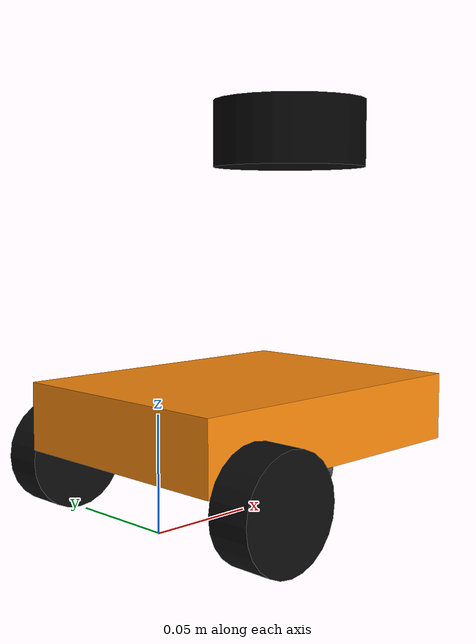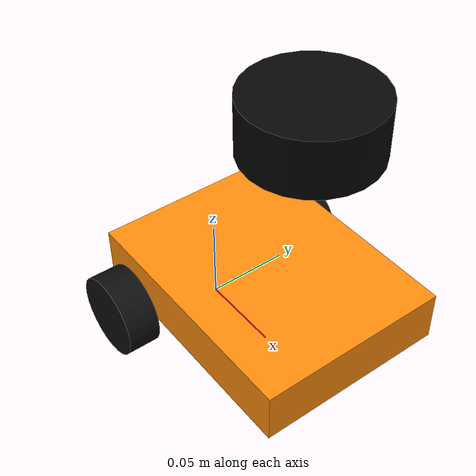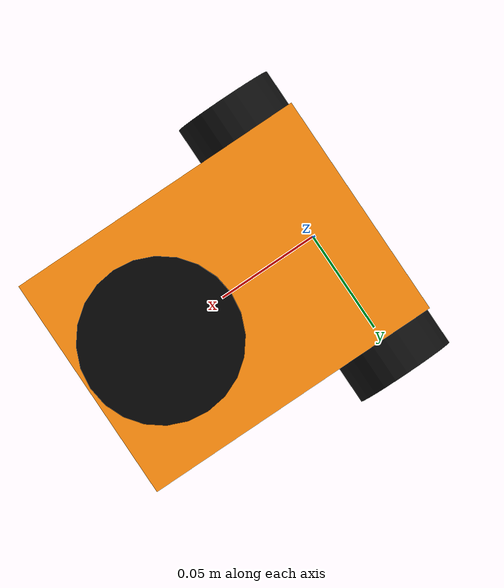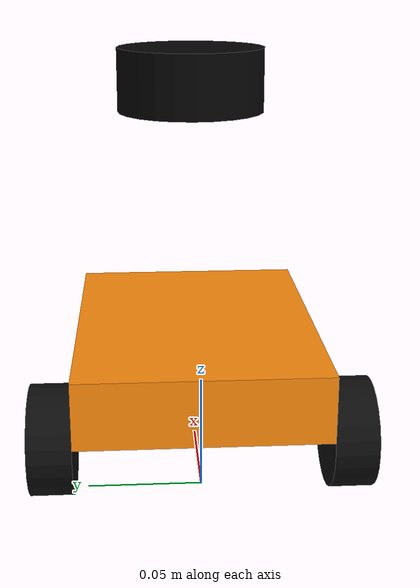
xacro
<?xml version="1.0"?>
<robot xmlns:xacro="http://www.ros.org/wiki/xacro" name="ros_diff_v2">

  <!-- Measured geometry, metres. -->
  <xacro:property name="body_length" value="0.146"/>
  <xacro:property name="body_width" value="0.110"/>
  <xacro:property name="body_height" value="0.030"/>
  <xacro:property name="front_extent" value="0.122"/>
  <xacro:property name="rear_extent" value="0.024"/>
  <xacro:property name="wheel_track" value="0.129"/>
  <xacro:property name="wheel_radius" value="0.024"/>
  <xacro:property name="wheel_width" value="0.019"/>
  <xacro:property name="caster_x" value="0.098"/>
  <xacro:property name="caster_radius" value="0.010"/>
  <xacro:property name="laser_x" value="0.080"/>
  <xacro:property name="laser_z_from_axle" value="0.130"/>

  <!-- Ground projection of the driven-wheel axle midpoint. -->
  <link name="base_footprint"/>

  <!-- REP-103: +X forward toward the caster, +Y left, +Z up. -->
  <joint name="base_footprint_joint" type="fixed">
    <origin xyz="0 0 ${wheel_radius}" rpy="0 0 0"/>
    <parent link="base_footprint"/>
    <child link="base_link"/>
  </joint>

  <!-- The plate origin follows the configured front/rear axle extents. -->
  <link name="base_link">
    <visual>
      <origin xyz="${(front_extent - rear_extent) / 2.0} 0 0.021" rpy="0 0 0"/>
      <geometry>
        <box size="${body_length} ${body_width} ${body_height}"/>
      </geometry>
      <material name="body_yellow">
        <color rgba="1.0 0.55 0.05 1.0"/>
      </material>
    </visual>
    <collision>
      <origin xyz="${(front_extent - rear_extent) / 2.0} 0 0.021" rpy="0 0 0"/>
      <geometry>
        <box size="${body_length} ${body_width} ${body_height}"/>
      </geometry>
    </collision>
  </link>

  <joint name="left_wheel_joint" type="fixed">
    <origin xyz="0 ${wheel_track / 2.0} 0" rpy="0 0 0"/>
    <parent link="base_link"/>
    <child link="left_wheel_link"/>
  </joint>

  <link name="left_wheel_link">
    <visual>
      <origin xyz="0 0 0" rpy="1.57079632679 0 0"/>
      <geometry>
        <cylinder radius="${wheel_radius}" length="${wheel_width}"/>
      </geometry>
      <material name="wheel_black">
        <color rgba="0.05 0.05 0.05 1.0"/>
      </material>
    </visual>
    <collision>
      <origin xyz="0 0 0" rpy="1.57079632679 0 0"/>
      <geometry>
        <cylinder radius="${wheel_radius}" length="${wheel_width}"/>
      </geometry>
    </collision>
  </link>

  <joint name="right_wheel_joint" type="fixed">
    <origin xyz="0 ${-wheel_track / 2.0} 0" rpy="0 0 0"/>
    <parent link="base_link"/>
    <child link="right_wheel_link"/>
  </joint>

  <link name="right_wheel_link">
    <visual>
      <origin xyz="0 0 0" rpy="1.57079632679 0 0"/>
      <geometry>
        <cylinder radius="${wheel_radius}" length="${wheel_width}"/>
      </geometry>
      <material name="wheel_black"/>
    </visual>
    <collision>
      <origin xyz="0 0 0" rpy="1.57079632679 0 0"/>
      <geometry>
        <cylinder radius="${wheel_radius}" length="${wheel_width}"/>
      </geometry>
    </collision>
  </link>

  <!-- Caster contact is x=+98 mm; radius is visual-only until measured. -->
  <joint name="front_caster_joint" type="fixed">
    <origin xyz="${caster_x} 0 ${caster_radius - wheel_radius}" rpy="0 0 0"/>
    <parent link="base_link"/>
    <child link="front_caster_link"/>
  </joint>

  <link name="front_caster_link">
    <visual>
      <geometry>
        <sphere radius="${caster_radius}"/>
      </geometry>
      <material name="caster_gray">
        <color rgba="0.35 0.35 0.35 1.0"/>
      </material>
    </visual>
  </link>

  <joint name="imu_joint" type="fixed">
    <origin xyz="0.049 0 0.035" rpy="0 0 0"/>
    <parent link="base_link"/>
    <child link="imu_link"/>
  </joint>
  <link name="imu_link"/>

  <!-- Lidar zero points backward, so laser +X is rotated pi from base +X. -->
  <joint name="base_laser_joint" type="fixed">
    <origin xyz="${laser_x} 0 ${laser_z_from_axle}"
            rpy="0 0 3.141592653589793"/>
    <parent link="base_link"/>
    <child link="laser"/>
  </joint>

  <link name="laser">
    <visual>
      <origin xyz="0 0 0.015" rpy="0 0 0"/>
      <geometry>
        <cylinder radius="0.035" length="0.030"/>
      </geometry>
      <material name="lidar_black">
        <color rgba="0.02 0.02 0.02 1.0"/>
      </material>
    </visual>
  </link>

</robot>
